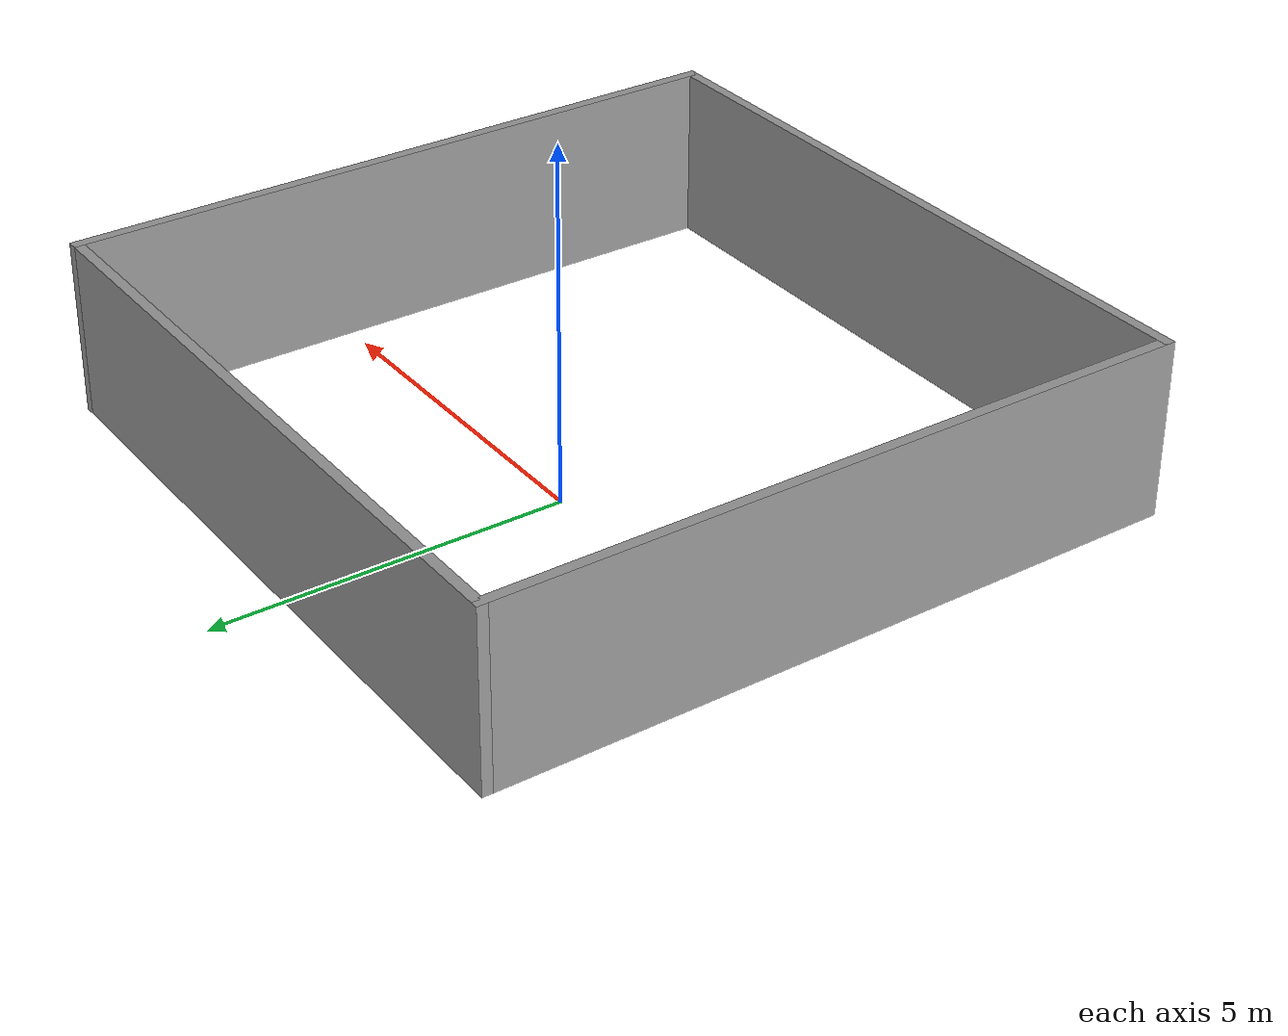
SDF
<?xml version='1.0'?>
<sdf version='1.6'>
  <model name='emptyroom'>
    <pose frame=''>0.545886 -1.02108 0 0 -0 0</pose>
    <link name='Wall_6'>
      <collision name='Wall_6_Collision'>
        <geometry>
          <box>
            <size>10 0.15 2.5</size>
          </box>
        </geometry>
        <pose frame=''>0 0 1.25 0 -0 0</pose>
      </collision>
      <visual name='Wall_6_Visual'>
        <pose frame=''>0 0 1.25 0 -0 0</pose>
        <geometry>
          <box>
            <size>10 0.15 2.5</size>
          </box>
        </geometry>
        <material>
          <script>
            <uri>file://media/materials/scripts/gazebo.material</uri>
            <name>Gazebo/Grey</name>
          </script>
          <ambient>1 1 1 1</ambient>
        </material>
        <meta>
          <layer>0</layer>
        </meta>
      </visual>
      <pose frame=''>0 -4.925 0 0 -0 0</pose>
    </link>
    <link name='Wall_7'>
      <collision name='Wall_7_Collision'>
        <geometry>
          <box>
            <size>10 0.15 2.5</size>
          </box>
        </geometry>
        <pose frame=''>0 0 1.25 0 -0 0</pose>
      </collision>
      <visual name='Wall_7_Visual'>
        <pose frame=''>0 0 1.25 0 -0 0</pose>
        <geometry>
          <box>
            <size>10 0.15 2.5</size>
          </box>
        </geometry>
        <material>
          <script>
            <uri>file://media/materials/scripts/gazebo.material</uri>
            <name>Gazebo/Grey</name>
          </script>
          <ambient>1 1 1 1</ambient>
        </material>
        <meta>
          <layer>0</layer>
        </meta>
      </visual>
      <pose frame=''>4.925 -0 0 0 -0 1.5708</pose>
    </link>
    <link name='Wall_8'>
      <collision name='Wall_8_Collision'>
        <geometry>
          <box>
            <size>10 0.15 2.5</size>
          </box>
        </geometry>
        <pose frame=''>0 0 1.25 0 -0 0</pose>
      </collision>
      <visual name='Wall_8_Visual'>
        <pose frame=''>0 0 1.25 0 -0 0</pose>
        <geometry>
          <box>
            <size>10 0.15 2.5</size>
          </box>
        </geometry>
        <material>
          <script>
            <uri>file://media/materials/scripts/gazebo.material</uri>
            <name>Gazebo/Grey</name>
          </script>
          <ambient>1 1 1 1</ambient>
        </material>
        <meta>
          <layer>0</layer>
        </meta>
      </visual>
      <pose frame=''>0 4.925 0 0 -0 3.14159</pose>
    </link>
    <link name='Wall_9'>
      <collision name='Wall_9_Collision'>
        <geometry>
          <box>
            <size>10 0.15 2.5</size>
          </box>
        </geometry>
        <pose frame=''>0 0 1.25 0 -0 0</pose>
      </collision>
      <visual name='Wall_9_Visual'>
        <pose frame=''>0 0 1.25 0 -0 0</pose>
        <geometry>
          <box>
            <size>10 0.15 2.5</size>
          </box>
        </geometry>
        <material>
          <script>
            <uri>file://media/materials/scripts/gazebo.material</uri>
            <name>Gazebo/Grey</name>
          </script>
          <ambient>1 1 1 1</ambient>
        </material>
        <meta>
          <layer>0</layer>
        </meta>
      </visual>
      <pose frame=''>-4.925 -0 0 0 -0 -1.5708</pose>
    </link>
    <static>1</static>
  </model>
</sdf>
